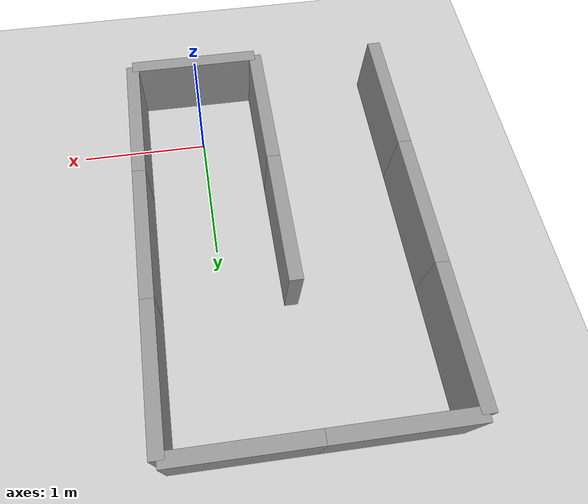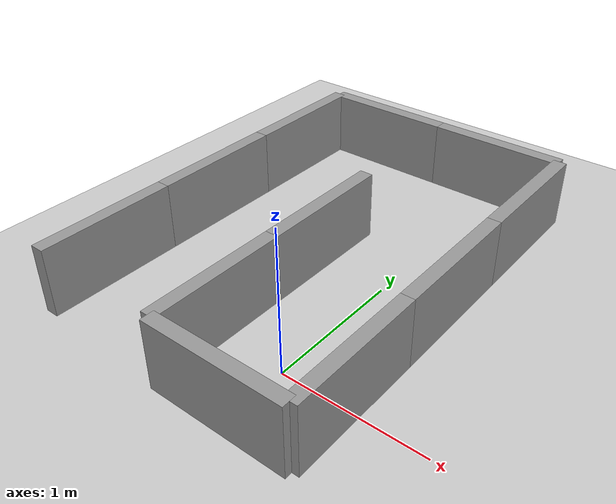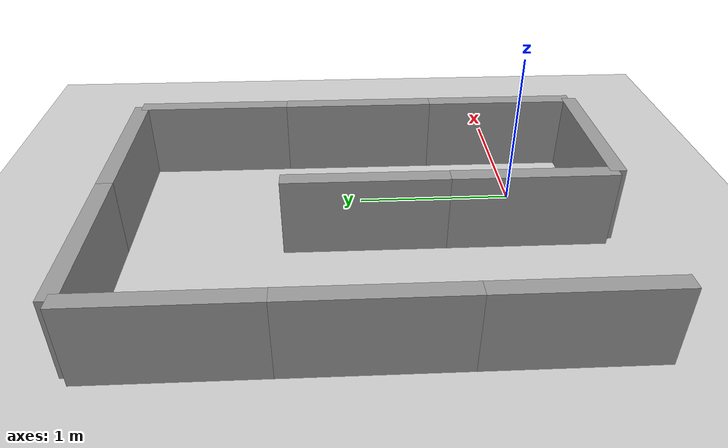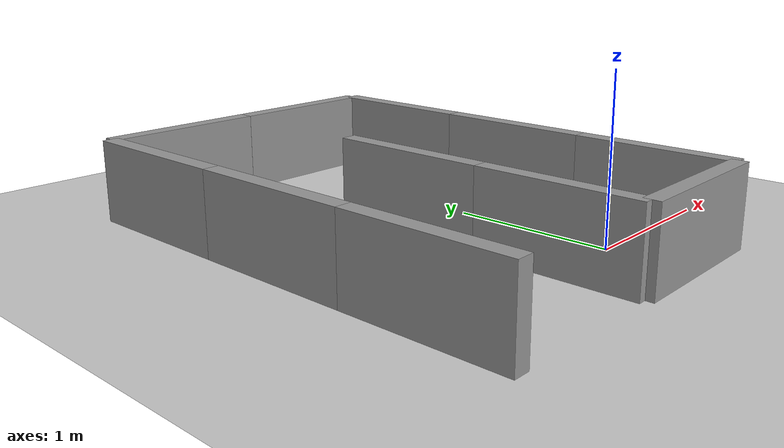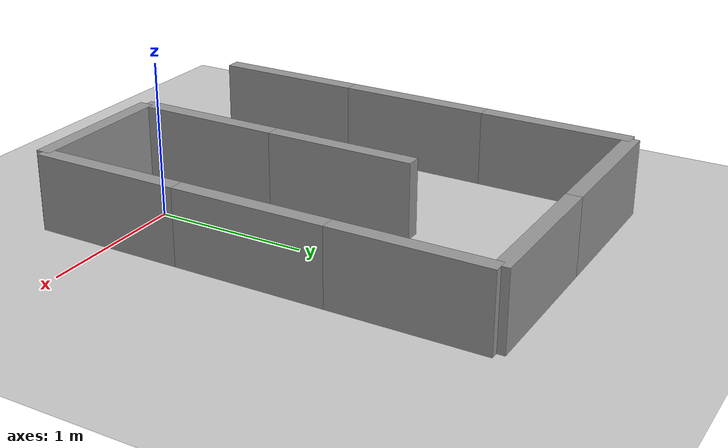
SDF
<sdf version="1.7">
 <world name="default">
  <light name="sun" type="directional">
   <pose>0 0 10 0 -0 0</pose>
   <diffuse>0.8 0.8 0.8 1</diffuse>
   <specular>0.2 0.2 0.2 1</specular>
   <attenuation>
    <range>1000</range>
    <constant>0.9</constant>
    <linear>0.01</linear>
    <quadratic>0.001</quadratic>
   </attenuation>
   <direction>-0.5 0.1 -0.9</direction>
   <spot><inner_angle>0</inner_angle><outer_angle>0</outer_angle><falloff>0</falloff></spot>
  </light>
  <model name="ground_plane">
   <static>1</static>
   <link name="link">
    <collision name="collision">
     <geometry><plane><normal>0 0 1</normal><size>100 100</size></plane></geometry>
     <surface>
      <contact><collide_bitmask>65535</collide_bitmask></contact>
      <friction><ode><mu>100</mu><mu2>50</mu2></ode></friction>
     </surface>
    </collision>
    <visual name="visual">
     <cast_shadows>0</cast_shadows>
     <geometry><plane><normal>0 0 1</normal><size>100 100</size></plane></geometry>
     <material>
      <script><uri>file://media/materials/scripts/gazebo.material</uri><name>Gazebo/Grey</name></script>
     </material>
    </visual>
   </link>
  </model>
  <gravity>0 0 -9.8</gravity>
  <magnetic_field>6e-06 2.3e-05 -4.2e-05</magnetic_field>
  <atmosphere type="adiabatic"/>
  <physics type="ode">
   <max_step_size>0.001</max_step_size>
   <real_time_factor>1</real_time_factor>
   <real_time_update_rate>1000</real_time_update_rate>
  </physics>
  <scene><ambient>0.4 0.4 0.4 1</ambient><background>0.7 0.7 0.7 1</background><shadows>1</shadows></scene>
  <spherical_coordinates>
   <surface_model>EARTH_WGS84</surface_model>
   <latitude_deg>0</latitude_deg>
   <longitude_deg>0</longitude_deg>
   <elevation>0</elevation>
   <heading_deg>0</heading_deg>
  </spherical_coordinates>
  <model name="wall">
   <link name="link">
    <inertial>
     <mass>1</mass>
     <inertia>
      <ixx>0.166667</ixx>
      <ixy>0</ixy>
      <ixz>0</ixz>
      <iyy>0.166667</iyy>
      <iyz>0</iyz>
      <izz>0.166667</izz>
     </inertia>
    </inertial>
    <visual name="visual">
     <geometry><box><size>0.1 1 0.5</size></box></geometry>
     <material>
      <script><name>Gazebo/Grey</name><uri>file://media/materials/scripts/gazebo.material</uri></script>
      <shader type="pixel"><normal_map>__default__</normal_map></shader>
      <ambient>0.3 0.3 0.3 1</ambient>
      <diffuse>0.7 0.7 0.7 1</diffuse>
      <specular>0.01 0.01 0.01 1</specular>
      <emissive>0 0 0 1</emissive>
     </material>
    </visual>
    <collision name="collision">
     <geometry><box><size>0.1 1 0.5</size></box></geometry>
     <surface>
      <friction>
       <ode><mu>1</mu><mu2>1</mu2><fdir1>0 0 0</fdir1><slip1>0</slip1><slip2>0</slip2></ode>
       <torsional>
        <coefficient>1</coefficient>
        <patch_radius>0</patch_radius>
        <surface_radius>0</surface_radius>
        <use_patch_radius>1</use_patch_radius>
        <ode><slip>0</slip></ode>
       </torsional>
      </friction>
      <bounce><restitution_coefficient>0</restitution_coefficient><threshold>1e+06</threshold></bounce>
      <contact>
       <collide_without_contact>0</collide_without_contact>
       <collide_without_contact_bitmask>1</collide_without_contact_bitmask>
       <collide_bitmask>1</collide_bitmask>
       <ode>
        <soft_cfm>0</soft_cfm>
        <soft_erp>0.2</soft_erp>
        <kp>1e+13</kp>
        <kd>1</kd>
        <max_vel>0.01</max_vel>
        <min_depth>0</min_depth>
       </ode>
       <bullet>
        <split_impulse>1</split_impulse>
        <split_impulse_penetration_threshold>-0.01</split_impulse_penetration_threshold>
        <soft_cfm>0</soft_cfm>
        <soft_erp>0.2</soft_erp>
        <kp>1e+13</kp>
        <kd>1</kd>
       </bullet>
      </contact>
     </surface>
    </collision>
   </link>
   <static>1</static>
   <pose>0.5 -5e-06 0.25 1e-05 -0 0</pose>
  </model>
  <model name="wall_clone">
   <link name="link">
    <inertial>
     <mass>1</mass>
     <inertia>
      <ixx>0.166667</ixx>
      <ixy>0</ixy>
      <ixz>0</ixz>
      <iyy>0.166667</iyy>
      <iyz>0</iyz>
      <izz>0.166667</izz>
     </inertia>
    </inertial>
    <visual name="visual">
     <geometry><box><size>0.1 1 0.5</size></box></geometry>
     <material>
      <script><name>Gazebo/Grey</name><uri>file://media/materials/scripts/gazebo.material</uri></script>
      <shader type="pixel"><normal_map>__default__</normal_map></shader>
      <ambient>0.3 0.3 0.3 1</ambient>
      <diffuse>0.7 0.7 0.7 1</diffuse>
      <specular>0.01 0.01 0.01 1</specular>
      <emissive>0 0 0 1</emissive>
     </material>
    </visual>
    <collision name="collision">
     <geometry><box><size>0.1 1 0.5</size></box></geometry>
     <surface>
      <friction>
       <ode><mu>1</mu><mu2>1</mu2><fdir1>0 0 0</fdir1><slip1>0</slip1><slip2>0</slip2></ode>
       <torsional>
        <coefficient>1</coefficient>
        <patch_radius>0</patch_radius>
        <surface_radius>0</surface_radius>
        <use_patch_radius>1</use_patch_radius>
        <ode><slip>0</slip></ode>
       </torsional>
      </friction>
      <bounce><restitution_coefficient>0</restitution_coefficient><threshold>1e+06</threshold></bounce>
      <contact>
       <collide_without_contact>0</collide_without_contact>
       <collide_without_contact_bitmask>1</collide_without_contact_bitmask>
       <collide_bitmask>1</collide_bitmask>
       <ode>
        <soft_cfm>0</soft_cfm>
        <soft_erp>0.2</soft_erp>
        <kp>1e+13</kp>
        <kd>1</kd>
        <max_vel>0.01</max_vel>
        <min_depth>0</min_depth>
       </ode>
       <bullet>
        <split_impulse>1</split_impulse>
        <split_impulse_penetration_threshold>-0.01</split_impulse_penetration_threshold>
        <soft_cfm>0</soft_cfm>
        <soft_erp>0.2</soft_erp>
        <kp>1e+13</kp>
        <kd>1</kd>
       </bullet>
      </contact>
     </surface>
    </collision>
   </link>
   <static>1</static>
   <pose>-0.5 0 0.25 1e-05 -0 0</pose>
  </model>
  <model name="wall_clone_clone">
   <link name="link">
    <inertial>
     <mass>1</mass>
     <inertia>
      <ixx>0.166667</ixx>
      <ixy>0</ixy>
      <ixz>0</ixz>
      <iyy>0.166667</iyy>
      <iyz>0</iyz>
      <izz>0.166667</izz>
     </inertia>
    </inertial>
    <visual name="visual">
     <geometry><box><size>0.1 1 0.5</size></box></geometry>
     <material>
      <script><name>Gazebo/Grey</name><uri>file://media/materials/scripts/gazebo.material</uri></script>
      <shader type="pixel"><normal_map>__default__</normal_map></shader>
      <ambient>0.3 0.3 0.3 1</ambient>
      <diffuse>0.7 0.7 0.7 1</diffuse>
      <specular>0.01 0.01 0.01 1</specular>
      <emissive>0 0 0 1</emissive>
     </material>
    </visual>
    <collision name="collision">
     <geometry><box><size>0.1 1 0.5</size></box></geometry>
     <surface>
      <friction>
       <ode><mu>1</mu><mu2>1</mu2><fdir1>0 0 0</fdir1><slip1>0</slip1><slip2>0</slip2></ode>
       <torsional>
        <coefficient>1</coefficient>
        <patch_radius>0</patch_radius>
        <surface_radius>0</surface_radius>
        <use_patch_radius>1</use_patch_radius>
        <ode><slip>0</slip></ode>
       </torsional>
      </friction>
      <bounce><restitution_coefficient>0</restitution_coefficient><threshold>1e+06</threshold></bounce>
      <contact>
       <collide_without_contact>0</collide_without_contact>
       <collide_without_contact_bitmask>1</collide_without_contact_bitmask>
       <collide_bitmask>1</collide_bitmask>
       <ode>
        <soft_cfm>0</soft_cfm>
        <soft_erp>0.2</soft_erp>
        <kp>1e+13</kp>
        <kd>1</kd>
        <max_vel>0.01</max_vel>
        <min_depth>0</min_depth>
       </ode>
       <bullet>
        <split_impulse>1</split_impulse>
        <split_impulse_penetration_threshold>-0.01</split_impulse_penetration_threshold>
        <soft_cfm>0</soft_cfm>
        <soft_erp>0.2</soft_erp>
        <kp>1e+13</kp>
        <kd>1</kd>
       </bullet>
      </contact>
     </surface>
    </collision>
   </link>
   <static>1</static>
   <pose>-0.5 1 0.25 1e-05 -0 0</pose>
  </model>
  <model name="wall_clone_clone_clone">
   <link name="link">
    <inertial>
     <mass>1</mass>
     <inertia>
      <ixx>0.166667</ixx>
      <ixy>0</ixy>
      <ixz>0</ixz>
      <iyy>0.166667</iyy>
      <iyz>0</iyz>
      <izz>0.166667</izz>
     </inertia>
    </inertial>
    <visual name="visual">
     <geometry><box><size>0.1 1 0.5</size></box></geometry>
     <material>
      <script><name>Gazebo/Grey</name><uri>file://media/materials/scripts/gazebo.material</uri></script>
      <shader type="pixel"><normal_map>__default__</normal_map></shader>
      <ambient>0.3 0.3 0.3 1</ambient>
      <diffuse>0.7 0.7 0.7 1</diffuse>
      <specular>0.01 0.01 0.01 1</specular>
      <emissive>0 0 0 1</emissive>
     </material>
    </visual>
    <collision name="collision">
     <geometry><box><size>0.1 1 0.5</size></box></geometry>
     <surface>
      <friction>
       <ode><mu>1</mu><mu2>1</mu2><fdir1>0 0 0</fdir1><slip1>0</slip1><slip2>0</slip2></ode>
       <torsional>
        <coefficient>1</coefficient>
        <patch_radius>0</patch_radius>
        <surface_radius>0</surface_radius>
        <use_patch_radius>1</use_patch_radius>
        <ode><slip>0</slip></ode>
       </torsional>
      </friction>
      <bounce><restitution_coefficient>0</restitution_coefficient><threshold>1e+06</threshold></bounce>
      <contact>
       <collide_without_contact>0</collide_without_contact>
       <collide_without_contact_bitmask>1</collide_without_contact_bitmask>
       <collide_bitmask>1</collide_bitmask>
       <ode>
        <soft_cfm>0</soft_cfm>
        <soft_erp>0.2</soft_erp>
        <kp>1e+13</kp>
        <kd>1</kd>
        <max_vel>0.01</max_vel>
        <min_depth>0</min_depth>
       </ode>
       <bullet>
        <split_impulse>1</split_impulse>
        <split_impulse_penetration_threshold>-0.01</split_impulse_penetration_threshold>
        <soft_cfm>0</soft_cfm>
        <soft_erp>0.2</soft_erp>
        <kp>1e+13</kp>
        <kd>1</kd>
       </bullet>
      </contact>
     </surface>
    </collision>
   </link>
   <static>1</static>
   <pose>0.5 1 0.25 1e-05 -0 0</pose>
  </model>
  <model name="wall_0">
   <link name="link">
    <inertial>
     <mass>1</mass>
     <inertia>
      <ixx>0.166667</ixx>
      <ixy>0</ixy>
      <ixz>0</ixz>
      <iyy>0.166667</iyy>
      <iyz>0</iyz>
      <izz>0.166667</izz>
     </inertia>
    </inertial>
    <visual name="visual">
     <geometry><box><size>0.1 1 0.5</size></box></geometry>
     <material>
      <script><name>Gazebo/Grey</name><uri>file://media/materials/scripts/gazebo.material</uri></script>
      <shader type="pixel"><normal_map>__default__</normal_map></shader>
      <ambient>0.3 0.3 0.3 1</ambient>
      <diffuse>0.7 0.7 0.7 1</diffuse>
      <specular>0.01 0.01 0.01 1</specular>
      <emissive>0 0 0 1</emissive>
     </material>
    </visual>
    <collision name="collision">
     <geometry><box><size>0.1 1 0.5</size></box></geometry>
     <surface>
      <friction>
       <ode><mu>1</mu><mu2>1</mu2><fdir1>0 0 0</fdir1><slip1>0</slip1><slip2>0</slip2></ode>
       <torsional>
        <coefficient>1</coefficient>
        <patch_radius>0</patch_radius>
        <surface_radius>0</surface_radius>
        <use_patch_radius>1</use_patch_radius>
        <ode><slip>0</slip></ode>
       </torsional>
      </friction>
      <bounce><restitution_coefficient>0</restitution_coefficient><threshold>1e+06</threshold></bounce>
      <contact>
       <collide_without_contact>0</collide_without_contact>
       <collide_without_contact_bitmask>1</collide_without_contact_bitmask>
       <collide_bitmask>1</collide_bitmask>
       <ode>
        <soft_cfm>0</soft_cfm>
        <soft_erp>0.2</soft_erp>
        <kp>1e+13</kp>
        <kd>1</kd>
        <max_vel>0.01</max_vel>
        <min_depth>0</min_depth>
       </ode>
       <bullet>
        <split_impulse>1</split_impulse>
        <split_impulse_penetration_threshold>-0.01</split_impulse_penetration_threshold>
        <soft_cfm>0</soft_cfm>
        <soft_erp>0.2</soft_erp>
        <kp>1e+13</kp>
        <kd>1</kd>
       </bullet>
      </contact>
     </surface>
    </collision>
   </link>
   <static>1</static>
   <pose>0.001062 -0.5 0.25 0 -0 1.571</pose>
  </model>
  <model name="wall_clone_clone_clone_clone">
   <link name="link">
    <inertial>
     <mass>1</mass>
     <inertia>
      <ixx>0.166667</ixx>
      <ixy>0</ixy>
      <ixz>0</ixz>
      <iyy>0.166667</iyy>
      <iyz>0</iyz>
      <izz>0.166667</izz>
     </inertia>
    </inertial>
    <visual name="visual">
     <geometry><box><size>0.1 1 0.5</size></box></geometry>
     <material>
      <script><name>Gazebo/Grey</name><uri>file://media/materials/scripts/gazebo.material</uri></script>
      <shader type="pixel"><normal_map>__default__</normal_map></shader>
      <ambient>0.3 0.3 0.3 1</ambient>
      <diffuse>0.7 0.7 0.7 1</diffuse>
      <specular>0.01 0.01 0.01 1</specular>
      <emissive>0 0 0 1</emissive>
     </material>
    </visual>
    <collision name="collision">
     <geometry><box><size>0.1 1 0.5</size></box></geometry>
     <surface>
      <friction>
       <ode><mu>1</mu><mu2>1</mu2><fdir1>0 0 0</fdir1><slip1>0</slip1><slip2>0</slip2></ode>
       <torsional>
        <coefficient>1</coefficient>
        <patch_radius>0</patch_radius>
        <surface_radius>0</surface_radius>
        <use_patch_radius>1</use_patch_radius>
        <ode><slip>0</slip></ode>
       </torsional>
      </friction>
      <bounce><restitution_coefficient>0</restitution_coefficient><threshold>1e+06</threshold></bounce>
      <contact>
       <collide_without_contact>0</collide_without_contact>
       <collide_without_contact_bitmask>1</collide_without_contact_bitmask>
       <collide_bitmask>1</collide_bitmask>
       <ode>
        <soft_cfm>0</soft_cfm>
        <soft_erp>0.2</soft_erp>
        <kp>1e+13</kp>
        <kd>1</kd>
        <max_vel>0.01</max_vel>
        <min_depth>0</min_depth>
       </ode>
       <bullet>
        <split_impulse>1</split_impulse>
        <split_impulse_penetration_threshold>-0.01</split_impulse_penetration_threshold>
        <soft_cfm>0</soft_cfm>
        <soft_erp>0.2</soft_erp>
        <kp>1e+13</kp>
        <kd>1</kd>
       </bullet>
      </contact>
     </surface>
    </collision>
   </link>
   <static>1</static>
   <pose>0.5 2 0.25 1e-05 -0 0</pose>
  </model>
  <model name="wall_0_clone">
   <link name="link">
    <inertial>
     <mass>1</mass>
     <inertia>
      <ixx>0.166667</ixx>
      <ixy>0</ixy>
      <ixz>0</ixz>
      <iyy>0.166667</iyy>
      <iyz>0</iyz>
      <izz>0.166667</izz>
     </inertia>
    </inertial>
    <visual name="visual">
     <geometry><box><size>0.1 1 0.5</size></box></geometry>
     <material>
      <script><name>Gazebo/Grey</name><uri>file://media/materials/scripts/gazebo.material</uri></script>
      <shader type="pixel"><normal_map>__default__</normal_map></shader>
      <ambient>0.3 0.3 0.3 1</ambient>
      <diffuse>0.7 0.7 0.7 1</diffuse>
      <specular>0.01 0.01 0.01 1</specular>
      <emissive>0 0 0 1</emissive>
     </material>
    </visual>
    <collision name="collision">
     <geometry><box><size>0.1 1 0.5</size></box></geometry>
     <surface>
      <friction>
       <ode><mu>1</mu><mu2>1</mu2><fdir1>0 0 0</fdir1><slip1>0</slip1><slip2>0</slip2></ode>
       <torsional>
        <coefficient>1</coefficient>
        <patch_radius>0</patch_radius>
        <surface_radius>0</surface_radius>
        <use_patch_radius>1</use_patch_radius>
        <ode><slip>0</slip></ode>
       </torsional>
      </friction>
      <bounce><restitution_coefficient>0</restitution_coefficient><threshold>1e+06</threshold></bounce>
      <contact>
       <collide_without_contact>0</collide_without_contact>
       <collide_without_contact_bitmask>1</collide_without_contact_bitmask>
       <collide_bitmask>1</collide_bitmask>
       <ode>
        <soft_cfm>0</soft_cfm>
        <soft_erp>0.2</soft_erp>
        <kp>1e+13</kp>
        <kd>1</kd>
        <max_vel>0.01</max_vel>
        <min_depth>0</min_depth>
       </ode>
       <bullet>
        <split_impulse>1</split_impulse>
        <split_impulse_penetration_threshold>-0.01</split_impulse_penetration_threshold>
        <soft_cfm>0</soft_cfm>
        <soft_erp>0.2</soft_erp>
        <kp>1e+13</kp>
        <kd>1</kd>
       </bullet>
      </contact>
     </surface>
    </collision>
   </link>
   <static>1</static>
   <pose>0 2.5 0.25 0 -0 1.571</pose>
  </model>
  <model name="wall_0_clone_1">
   <link name="link">
    <inertial>
     <mass>1</mass>
     <inertia>
      <ixx>0.166667</ixx>
      <ixy>0</ixy>
      <ixz>0</ixz>
      <iyy>0.166667</iyy>
      <iyz>0</iyz>
      <izz>0.166667</izz>
     </inertia>
    </inertial>
    <visual name="visual">
     <geometry><box><size>0.1 1 0.5</size></box></geometry>
     <material>
      <script><name>Gazebo/Grey</name><uri>file://media/materials/scripts/gazebo.material</uri></script>
      <shader type="pixel"><normal_map>__default__</normal_map></shader>
      <ambient>0.3 0.3 0.3 1</ambient>
      <diffuse>0.7 0.7 0.7 1</diffuse>
      <specular>0.01 0.01 0.01 1</specular>
      <emissive>0 0 0 1</emissive>
     </material>
    </visual>
    <collision name="collision">
     <geometry><box><size>0.1 1 0.5</size></box></geometry>
     <surface>
      <friction>
       <ode><mu>1</mu><mu2>1</mu2><fdir1>0 0 0</fdir1><slip1>0</slip1><slip2>0</slip2></ode>
       <torsional>
        <coefficient>1</coefficient>
        <patch_radius>0</patch_radius>
        <surface_radius>0</surface_radius>
        <use_patch_radius>1</use_patch_radius>
        <ode><slip>0</slip></ode>
       </torsional>
      </friction>
      <bounce><restitution_coefficient>0</restitution_coefficient><threshold>1e+06</threshold></bounce>
      <contact>
       <collide_without_contact>0</collide_without_contact>
       <collide_without_contact_bitmask>1</collide_without_contact_bitmask>
       <collide_bitmask>1</collide_bitmask>
       <ode>
        <soft_cfm>0</soft_cfm>
        <soft_erp>0.2</soft_erp>
        <kp>1e+13</kp>
        <kd>1</kd>
        <max_vel>0.01</max_vel>
        <min_depth>0</min_depth>
       </ode>
       <bullet>
        <split_impulse>1</split_impulse>
        <split_impulse_penetration_threshold>-0.01</split_impulse_penetration_threshold>
        <soft_cfm>0</soft_cfm>
        <soft_erp>0.2</soft_erp>
        <kp>1e+13</kp>
        <kd>1</kd>
       </bullet>
      </contact>
     </surface>
    </collision>
   </link>
   <static>1</static>
   <pose>-1 2.5 0.25 0 -0 1.571</pose>
  </model>
  <model name="wall_clone_clone_clone_clone_clone">
   <link name="link">
    <inertial>
     <mass>1</mass>
     <inertia>
      <ixx>0.166667</ixx>
      <ixy>0</ixy>
      <ixz>0</ixz>
      <iyy>0.166667</iyy>
      <iyz>0</iyz>
      <izz>0.166667</izz>
     </inertia>
    </inertial>
    <visual name="visual">
     <geometry><box><size>0.1 1 0.5</size></box></geometry>
     <material>
      <script><name>Gazebo/Grey</name><uri>file://media/materials/scripts/gazebo.material</uri></script>
      <shader type="pixel"><normal_map>__default__</normal_map></shader>
      <ambient>0.3 0.3 0.3 1</ambient>
      <diffuse>0.7 0.7 0.7 1</diffuse>
      <specular>0.01 0.01 0.01 1</specular>
      <emissive>0 0 0 1</emissive>
     </material>
    </visual>
    <collision name="collision">
     <geometry><box><size>0.1 1 0.5</size></box></geometry>
     <surface>
      <friction>
       <ode><mu>1</mu><mu2>1</mu2><fdir1>0 0 0</fdir1><slip1>0</slip1><slip2>0</slip2></ode>
       <torsional>
        <coefficient>1</coefficient>
        <patch_radius>0</patch_radius>
        <surface_radius>0</surface_radius>
        <use_patch_radius>1</use_patch_radius>
        <ode><slip>0</slip></ode>
       </torsional>
      </friction>
      <bounce><restitution_coefficient>0</restitution_coefficient><threshold>1e+06</threshold></bounce>
      <contact>
       <collide_without_contact>0</collide_without_contact>
       <collide_without_contact_bitmask>1</collide_without_contact_bitmask>
       <collide_bitmask>1</collide_bitmask>
       <ode>
        <soft_cfm>0</soft_cfm>
        <soft_erp>0.2</soft_erp>
        <kp>1e+13</kp>
        <kd>1</kd>
        <max_vel>0.01</max_vel>
        <min_depth>0</min_depth>
       </ode>
       <bullet>
        <split_impulse>1</split_impulse>
        <split_impulse_penetration_threshold>-0.01</split_impulse_penetration_threshold>
        <soft_cfm>0</soft_cfm>
        <soft_erp>0.2</soft_erp>
        <kp>1e+13</kp>
        <kd>1</kd>
       </bullet>
      </contact>
     </surface>
    </collision>
   </link>
   <static>1</static>
   <pose>-1.5 2 0.25 1e-05 -0 0</pose>
  </model>
  <model name="wall_clone_clone_clone_clone_clone_clone">
   <link name="link">
    <inertial>
     <mass>1</mass>
     <inertia>
      <ixx>0.166667</ixx>
      <ixy>0</ixy>
      <ixz>0</ixz>
      <iyy>0.166667</iyy>
      <iyz>0</iyz>
      <izz>0.166667</izz>
     </inertia>
    </inertial>
    <visual name="visual">
     <geometry><box><size>0.1 1 0.5</size></box></geometry>
     <material>
      <script><name>Gazebo/Grey</name><uri>file://media/materials/scripts/gazebo.material</uri></script>
      <shader type="pixel"><normal_map>__default__</normal_map></shader>
      <ambient>0.3 0.3 0.3 1</ambient>
      <diffuse>0.7 0.7 0.7 1</diffuse>
      <specular>0.01 0.01 0.01 1</specular>
      <emissive>0 0 0 1</emissive>
     </material>
    </visual>
    <collision name="collision">
     <geometry><box><size>0.1 1 0.5</size></box></geometry>
     <surface>
      <friction>
       <ode><mu>1</mu><mu2>1</mu2><fdir1>0 0 0</fdir1><slip1>0</slip1><slip2>0</slip2></ode>
       <torsional>
        <coefficient>1</coefficient>
        <patch_radius>0</patch_radius>
        <surface_radius>0</surface_radius>
        <use_patch_radius>1</use_patch_radius>
        <ode><slip>0</slip></ode>
       </torsional>
      </friction>
      <bounce><restitution_coefficient>0</restitution_coefficient><threshold>1e+06</threshold></bounce>
      <contact>
       <collide_without_contact>0</collide_without_contact>
       <collide_without_contact_bitmask>1</collide_without_contact_bitmask>
       <collide_bitmask>1</collide_bitmask>
       <ode>
        <soft_cfm>0</soft_cfm>
        <soft_erp>0.2</soft_erp>
        <kp>1e+13</kp>
        <kd>1</kd>
        <max_vel>0.01</max_vel>
        <min_depth>0</min_depth>
       </ode>
       <bullet>
        <split_impulse>1</split_impulse>
        <split_impulse_penetration_threshold>-0.01</split_impulse_penetration_threshold>
        <soft_cfm>0</soft_cfm>
        <soft_erp>0.2</soft_erp>
        <kp>1e+13</kp>
        <kd>1</kd>
       </bullet>
      </contact>
     </surface>
    </collision>
   </link>
   <static>1</static>
   <pose>-1.5 1 0.25 1e-05 -0 0</pose>
  </model>
  <model name="wall_clone_clone_clone_clone_clone_clone_0">
   <link name="link">
    <inertial>
     <mass>1</mass>
     <inertia>
      <ixx>0.166667</ixx>
      <ixy>0</ixy>
      <ixz>0</ixz>
      <iyy>0.166667</iyy>
      <iyz>0</iyz>
      <izz>0.166667</izz>
     </inertia>
    </inertial>
    <visual name="visual">
     <geometry><box><size>0.1 1 0.5</size></box></geometry>
     <material>
      <script><name>Gazebo/Grey</name><uri>file://media/materials/scripts/gazebo.material</uri></script>
      <shader type="pixel"><normal_map>__default__</normal_map></shader>
      <ambient>0.3 0.3 0.3 1</ambient>
      <diffuse>0.7 0.7 0.7 1</diffuse>
      <specular>0.01 0.01 0.01 1</specular>
      <emissive>0 0 0 1</emissive>
     </material>
    </visual>
    <collision name="collision">
     <geometry><box><size>0.1 1 0.5</size></box></geometry>
     <surface>
      <friction>
       <ode><mu>1</mu><mu2>1</mu2><fdir1>0 0 0</fdir1><slip1>0</slip1><slip2>0</slip2></ode>
       <torsional>
        <coefficient>1</coefficient>
        <patch_radius>0</patch_radius>
        <surface_radius>0</surface_radius>
        <use_patch_radius>1</use_patch_radius>
        <ode><slip>0</slip></ode>
       </torsional>
      </friction>
      <bounce><restitution_coefficient>0</restitution_coefficient><threshold>1e+06</threshold></bounce>
      <contact>
       <collide_without_contact>0</collide_without_contact>
       <collide_without_contact_bitmask>1</collide_without_contact_bitmask>
       <collide_bitmask>1</collide_bitmask>
       <ode>
        <soft_cfm>0</soft_cfm>
        <soft_erp>0.2</soft_erp>
        <kp>1e+13</kp>
        <kd>1</kd>
        <max_vel>0.01</max_vel>
        <min_depth>0</min_depth>
       </ode>
       <bullet>
        <split_impulse>1</split_impulse>
        <split_impulse_penetration_threshold>-0.01</split_impulse_penetration_threshold>
        <soft_cfm>0</soft_cfm>
        <soft_erp>0.2</soft_erp>
        <kp>1e+13</kp>
        <kd>1</kd>
       </bullet>
      </contact>
     </surface>
    </collision>
   </link>
   <static>1</static>
   <pose>-1.5 0 0.25 1e-05 -0 0</pose>
  </model>
 </world>
</sdf>
